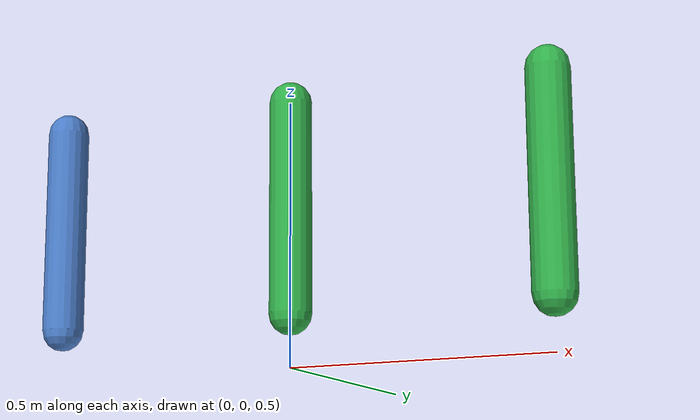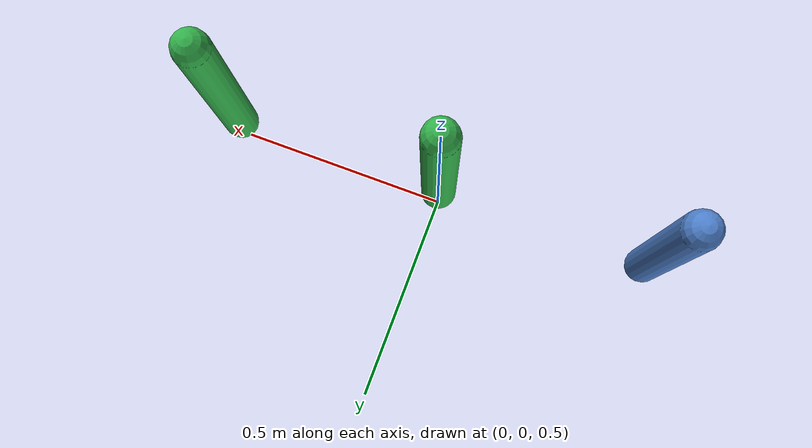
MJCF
<mujoco model="defaults_compiler">
  <compiler angle="radian"/>
  <default>
    <joint type="hinge" axis="0 1 0" damping="0.1"/>
    <geom type="capsule" size="0.04" rgba="0.3 0.5 0.8 1"/>
    <default class="leg">
      <joint damping="1.0" armature="0.02"/>
      <geom rgba="0.2 0.7 0.3 1"/>
    </default>
  </default>
  <worldbody>
    <body pos="-0.5 0 1">
      <joint name="base_joint"/>
      <geom name="base_geom" fromto="0 0 0 0 0 -.4" mass="1"/>
    </body>
    <body pos="0 0 1" childclass="leg">
      <joint name="leg_joint"/>
      <geom name="leg_geom" fromto="0 0 0 0 0 -.4" mass="1"/>
    </body>
    <body pos="0.5 0 1" childclass="leg">
      <joint name="override_joint" damping="0.3"/>
      <geom name="override_geom" fromto="0 0 0 0 0 -.4" mass="1"/>
    </body>
  </worldbody>
</mujoco>
